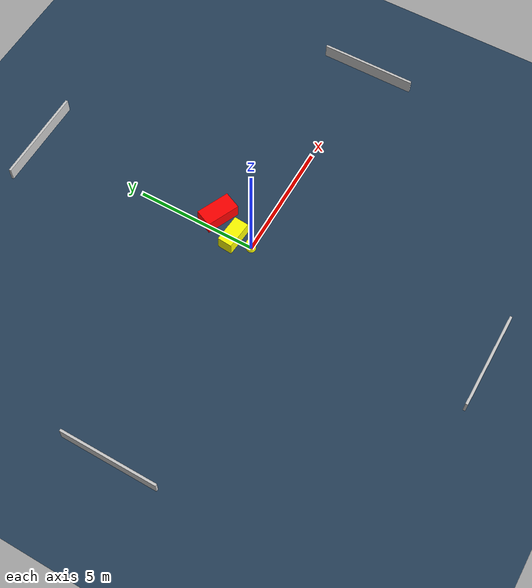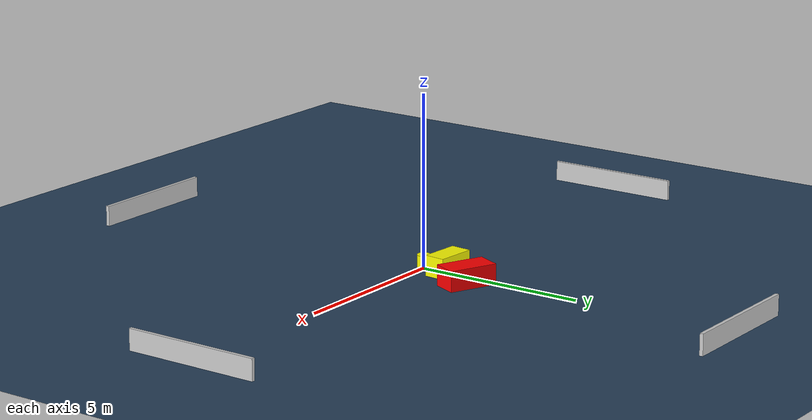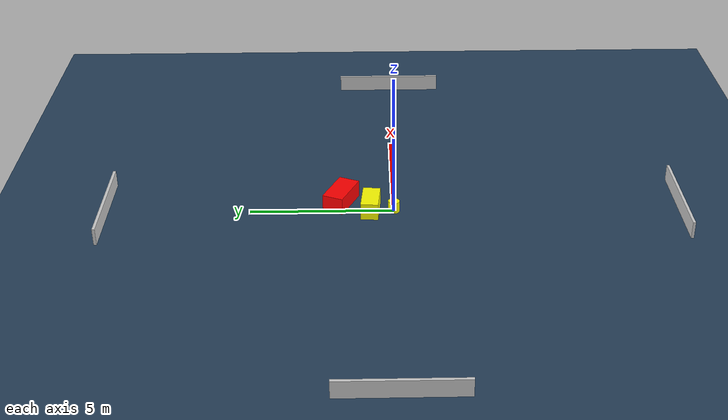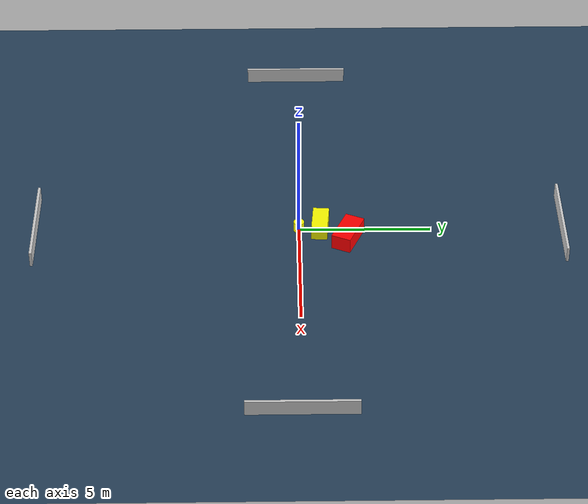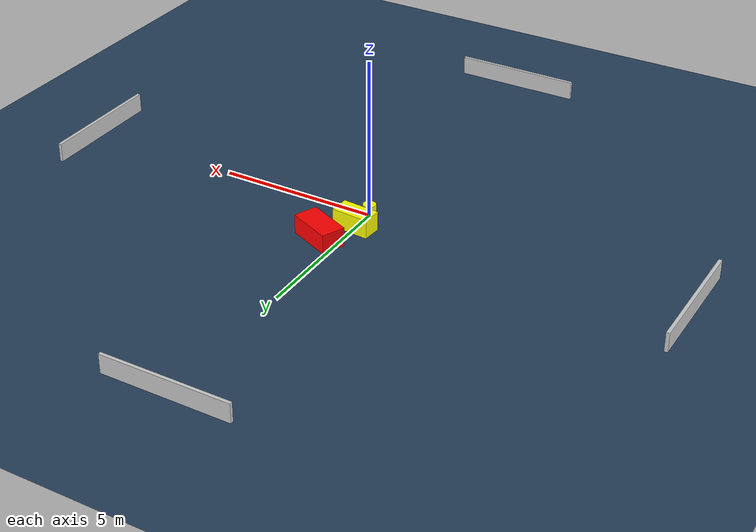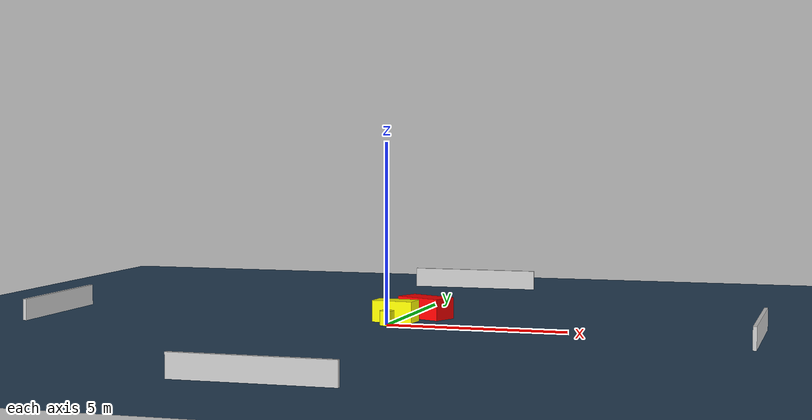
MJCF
<?xml version="1.0" ?>
<mujoco model="generated_environment">
  <option timestep="0.01" integrator="RK4" cone="elliptic"/>
  <default>
    <geom density="1"/>
  </default>
  <asset>
    <texture builtin="gradient" height="3072" name="skybox" rgb1="0.3 0.5 0.7" rgb2="0 0 0" type="skybox" width="512"/>
    <texture builtin="checker" height="300" name="groundplane" rgb1="0.2 0.3 0.4" rgb2="0.1 0.2 0.3" type="2d" width="300"/>
    <material name="groundplane" reflectance="0.2" texrepeat="5 5" texture="groundplane"/>
  </asset>
  <worldbody>
    <light dir="0 0 -1" directional="true" pos="0 0 1.5"/>
    <geom condim="3" friction="0.5 0.005 0.001" material="groundplane" name="floor" pos="0 0 0" size="0 0 0.05" type="plane"/>
    <body name="walls">
      <geom name="wall_1" condim="4" pos="-10.0 0.0 0.3" rgba="0.800000011920929 0.800000011920929 0.800000011920929 1.0" size="0.05 2.0 0.3" type="box"/>
      <geom name="wall_2" condim="4" pos="10.0 0.0 0.3" rgba="0.800000011920929 0.800000011920929 0.800000011920929 1.0" size="0.05 2.0 0.3" type="box"/>
      <geom name="wall_3" condim="4" pos="0.0 -10.0 0.3" rgba="0.800000011920929 0.800000011920929 0.800000011920929 1.0" size="2.0 0.05 0.3" type="box"/>
      <geom name="wall_4" condim="4" pos="0.0 10.0 0.3" rgba="0.800000011920929 0.800000011920929 0.800000011920929 1.0" size="2.0 0.05 0.3" type="box"/>
    </body>
    <body name="robot">
      <joint name="joint_x" type="slide" pos="0 0 0" axis="1 0 0"/>
      <joint name="joint_y" type="slide" pos="0 0 0" axis="0 1 0"/>
      <geom name="robot" type="cylinder" pos="0.0 0.0 0.2" size="0.2 0.2 0.0" mass="5.0" friction="1.0 0.005 0.0001" condim="4" rgba="1.0 1.0 0.0 1.0"/>
    </body>
    <body name="obstacle_1_movable">
      <geom name="obstacle_1_movable" condim="4" pos="0.0035130055265785954 0.8092956086999997 0.3" euler="0 0 85.41198733439047" friction="0.0 0.005 0.001" rgba="1.0 1.0 0.0 1.0" size="0.30334525909270876 0.5839753129709957 0.3" type="box" mass="0.1"/>
      <joint type="free"/>
    </body>
    <body name="obstacle_2_static">
      <geom name="obstacle_2_static" condim="4" pos="0.5876631066789765 1.8451184574208095 0.3" euler="0 0 336.0102848937403" friction="0.0 0.005 0.001" rgba="1.0 0.0 0.0 1.0" size="0.7127550237339069 0.3756346573862265 0.3" type="box"/>
    </body>
  </worldbody>
  <actuator>
    <motor name="actuator_x" joint="joint_x" gear="1" ctrlrange="-1 1"/>
    <motor name="actuator_y" joint="joint_y" gear="1" ctrlrange="-1 1"/>
  </actuator>
</mujoco>
